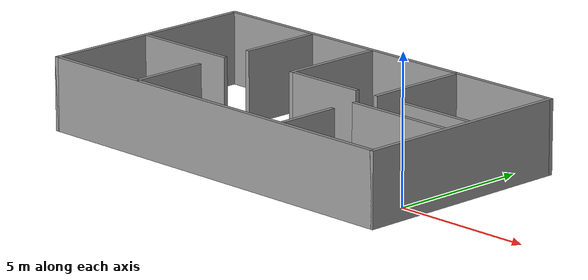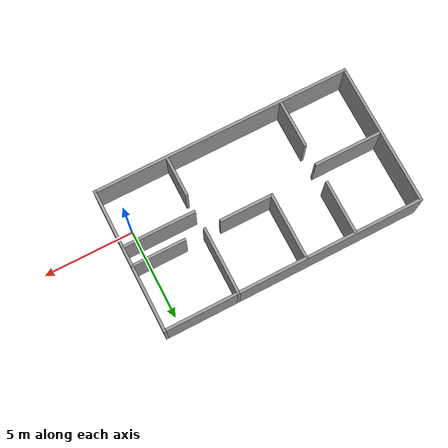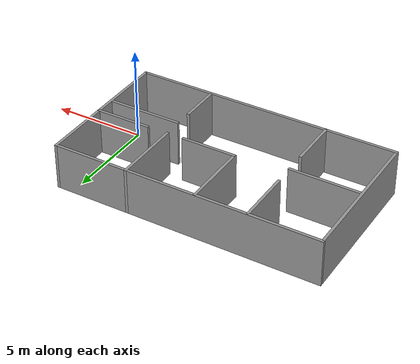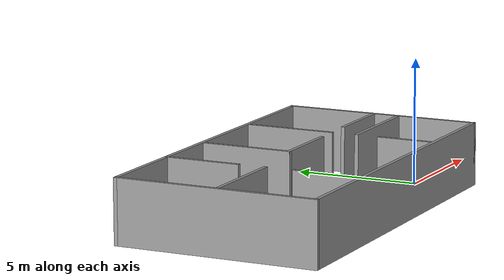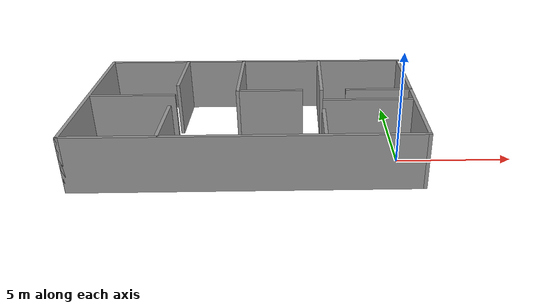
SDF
<?xml version='1.0'?>
<sdf version='1.7'>
  <model name='house01'>
    <pose>-6.35532 1.80639 0 0 -0 0</pose>
    <link name='Wall_10'>
      <collision name='Wall_10_Collision'>
        <geometry>
          <box>
            <size>3.75 0.15 2.5</size>
          </box>
        </geometry>
        <pose>0 0 1.25 0 -0 0</pose>
      </collision>
      <visual name='Wall_10_Visual'>
        <pose>0 0 1.25 0 -0 0</pose>
        <geometry>
          <box>
            <size>3.75 0.15 2.5</size>
          </box>
        </geometry>
        <material>
          <script>
            <uri>file://media/materials/scripts/gazebo.material</uri>
            <name>Gazebo/Grey</name>
          </script>
          <ambient>1 1 1 1</ambient>
        </material>
        <meta>
          <layer>0</layer>
        </meta>
      </visual>
      <pose>-5.22377 -0.097684 0 0 -0 0</pose>
    </link>
    <link name='Wall_16'>
      <collision name='Wall_16_Collision'>
        <geometry>
          <box>
            <size>2.75 0.15 2.5</size>
          </box>
        </geometry>
        <pose>0 0 1.25 0 -0 0</pose>
      </collision>
      <visual name='Wall_16_Visual'>
        <pose>0 0 1.25 0 -0 0</pose>
        <geometry>
          <box>
            <size>2.75 0.15 2.5</size>
          </box>
        </geometry>
        <material>
          <script>
            <uri>file://media/materials/scripts/gazebo.material</uri>
            <name>Gazebo/Grey</name>
          </script>
          <ambient>1 1 1 1</ambient>
        </material>
        <meta>
          <layer>0</layer>
        </meta>
      </visual>
      <pose>-3.39428 -2.5784 0 0 -0 1.5708</pose>
    </link>
    <link name='Wall_2'>
      <collision name='Wall_2_Collision'>
        <geometry>
          <box>
            <size>8 0.15 2.5</size>
          </box>
        </geometry>
        <pose>0 0 1.25 0 -0 0</pose>
      </collision>
      <visual name='Wall_2_Visual'>
        <pose>0 0 1.25 0 -0 0</pose>
        <geometry>
          <box>
            <size>8 0.15 2.5</size>
          </box>
        </geometry>
        <material>
          <script>
            <uri>file://media/materials/scripts/gazebo.material</uri>
            <name>Gazebo/Grey</name>
          </script>
          <ambient>1 1 1 1</ambient>
        </material>
        <meta>
          <layer>0</layer>
        </meta>
      </visual>
      <pose>-7.175 -0 0 0 -0 -1.5708</pose>
    </link>
    <link name='Wall_20'>
      <collision name='Wall_20_Collision'>
        <geometry>
          <box>
            <size>3 0.15 2.5</size>
          </box>
        </geometry>
        <pose>0 0 1.25 0 -0 0</pose>
      </collision>
      <visual name='Wall_20_Visual'>
        <pose>0 0 1.25 0 -0 0</pose>
        <geometry>
          <box>
            <size>3 0.15 2.5</size>
          </box>
        </geometry>
        <material>
          <script>
            <uri>file://media/materials/scripts/gazebo.material</uri>
            <name>Gazebo/Grey</name>
          </script>
          <ambient>1 1 1 1</ambient>
        </material>
        <meta>
          <layer>0</layer>
        </meta>
      </visual>
      <pose>-3.42453 2.43951 0 0 -0 -1.5708</pose>
    </link>
    <link name='Wall_22'>
      <collision name='Wall_22_Collision'>
        <geometry>
          <box>
            <size>3.75 0.15 2.5</size>
          </box>
        </geometry>
        <pose>0 0 1.25 0 -0 0</pose>
      </collision>
      <visual name='Wall_22_Visual'>
        <pose>0 0 1.25 0 -0 0</pose>
        <geometry>
          <box>
            <size>3.75 0.15 2.5</size>
          </box>
        </geometry>
        <material>
          <script>
            <uri>file://media/materials/scripts/gazebo.material</uri>
            <name>Gazebo/Grey</name>
          </script>
          <ambient>1 1 1 1</ambient>
        </material>
        <meta>
          <layer>0</layer>
        </meta>
      </visual>
      <pose>3.1388 2.125 0 0 -0 -1.5708</pose>
    </link>
    <link name='Wall_26'>
      <collision name='Wall_26_Collision'>
        <geometry>
          <box>
            <size>3.75 0.15 2.5</size>
          </box>
        </geometry>
        <pose>0 0 1.25 0 -0 0</pose>
      </collision>
      <visual name='Wall_26_Visual'>
        <pose>0 0 1.25 0 -0 0</pose>
        <geometry>
          <box>
            <size>3.75 0.15 2.5</size>
          </box>
        </geometry>
        <material>
          <script>
            <uri>file://media/materials/scripts/gazebo.material</uri>
            <name>Gazebo/Grey</name>
          </script>
          <ambient>1 1 1 1</ambient>
        </material>
        <meta>
          <layer>0</layer>
        </meta>
      </visual>
      <pose>-0.641919 2.09475 0 0 -0 -1.5708</pose>
    </link>
    <link name='Wall_27'>
      <collision name='Wall_27_Collision'>
        <geometry>
          <box>
            <size>3 0.15 2.5</size>
          </box>
        </geometry>
        <pose>0 0 1.25 0 -0 0</pose>
      </collision>
      <visual name='Wall_27_Visual'>
        <pose>0 0 1.25 0 -0 0</pose>
        <geometry>
          <box>
            <size>3 0.15 2.5</size>
          </box>
        </geometry>
        <material>
          <script>
            <uri>file://media/materials/scripts/gazebo.material</uri>
            <name>Gazebo/Grey</name>
          </script>
          <ambient>1 1 1 1</ambient>
        </material>
        <meta>
          <layer>0</layer>
        </meta>
      </visual>
      <pose>0.783081 0.294754 0 0 -0 0</pose>
    </link>
    <link name='Wall_3'>
      <collision name='Wall_3_Collision'>
        <geometry>
          <box>
            <size>14.5 0.15 2.5</size>
          </box>
        </geometry>
        <pose>0 0 1.25 0 -0 0</pose>
      </collision>
      <visual name='Wall_3_Visual'>
        <pose>0 0 1.25 0 -0 0</pose>
        <geometry>
          <box>
            <size>14.5 0.15 2.5</size>
          </box>
        </geometry>
        <material>
          <script>
            <uri>file://media/materials/scripts/gazebo.material</uri>
            <name>Gazebo/Grey</name>
          </script>
          <ambient>1 1 1 1</ambient>
        </material>
        <meta>
          <layer>0</layer>
        </meta>
      </visual>
      <pose>0 -3.925 0 0 -0 0</pose>
    </link>
    <link name='Wall_34'>
      <collision name='Wall_34_Collision'>
        <geometry>
          <box>
            <size>3 0.15 2.5</size>
          </box>
        </geometry>
        <pose>0 0 1.25 0 -0 0</pose>
      </collision>
      <visual name='Wall_34_Visual'>
        <pose>0 0 1.25 0 -0 0</pose>
        <geometry>
          <box>
            <size>3 0.15 2.5</size>
          </box>
        </geometry>
        <material>
          <script>
            <uri>file://media/materials/scripts/gazebo.material</uri>
            <name>Gazebo/Grey</name>
          </script>
          <ambient>1 1 1 1</ambient>
        </material>
        <meta>
          <layer>0</layer>
        </meta>
      </visual>
      <pose>5.72327 0.334221 0 0 -0 0</pose>
    </link>
    <link name='Wall_36'>
      <collision name='Wall_36_Collision'>
        <geometry>
          <box>
            <size>4 0.15 2.5</size>
          </box>
        </geometry>
        <pose>0 0 1.25 0 -0 0</pose>
      </collision>
      <visual name='Wall_36_Visual'>
        <pose>0 0 1.25 0 -0 0</pose>
        <geometry>
          <box>
            <size>4 0.15 2.5</size>
          </box>
        </geometry>
        <material>
          <script>
            <uri>file://media/materials/scripts/gazebo.material</uri>
            <name>Gazebo/Grey</name>
          </script>
          <ambient>1 1 1 1</ambient>
        </material>
        <meta>
          <layer>0</layer>
        </meta>
      </visual>
      <pose>5.14884 -0.73115 0 0 -0 3.14159</pose>
    </link>
    <link name='Wall_38'>
      <collision name='Wall_38_Collision'>
        <geometry>
          <box>
            <size>2.25 0.15 2.5</size>
          </box>
        </geometry>
        <pose>0 0 1.25 0 -0 0</pose>
      </collision>
      <visual name='Wall_38_Visual'>
        <pose>0 0 1.25 0 -0 0</pose>
        <geometry>
          <box>
            <size>2.25 0.15 2.5</size>
          </box>
        </geometry>
        <material>
          <script>
            <uri>file://media/materials/scripts/gazebo.material</uri>
            <name>Gazebo/Grey</name>
          </script>
          <ambient>1 1 1 1</ambient>
        </material>
        <meta>
          <layer>0</layer>
        </meta>
      </visual>
      <pose>3.14879 -2.76512 0 0 -0 1.5708</pose>
    </link>
    <link name='Wall_6'>
      <collision name='Wall_6_Collision'>
        <geometry>
          <box>
            <size>8 0.15 2.5</size>
          </box>
        </geometry>
        <pose>0 0 1.25 0 -0 0</pose>
      </collision>
      <visual name='Wall_6_Visual'>
        <pose>0 0 1.25 0 -0 0</pose>
        <geometry>
          <box>
            <size>8 0.15 2.5</size>
          </box>
        </geometry>
        <material>
          <script>
            <uri>file://media/materials/scripts/gazebo.material</uri>
            <name>Gazebo/Grey</name>
          </script>
          <ambient>1 1 1 1</ambient>
        </material>
        <meta>
          <layer>0</layer>
        </meta>
      </visual>
      <pose>7.175 -0 0 0 -0 1.5708</pose>
    </link>
    <link name='Wall_7'>
      <collision name='Wall_7_Collision'>
        <geometry>
          <box>
            <size>14.5 0.15 2.5</size>
          </box>
        </geometry>
        <pose>0 0 1.25 0 -0 0</pose>
      </collision>
      <visual name='Wall_7_Visual'>
        <pose>0 0 1.25 0 -0 0</pose>
        <geometry>
          <box>
            <size>14.5 0.15 2.5</size>
          </box>
        </geometry>
        <material>
          <script>
            <uri>file://media/materials/scripts/gazebo.material</uri>
            <name>Gazebo/Grey</name>
          </script>
          <ambient>1 1 1 1</ambient>
        </material>
        <meta>
          <layer>0</layer>
        </meta>
      </visual>
      <pose>0 3.925 0 0 -0 3.14159</pose>
    </link>
    <static>1</static>
  </model>
</sdf>
